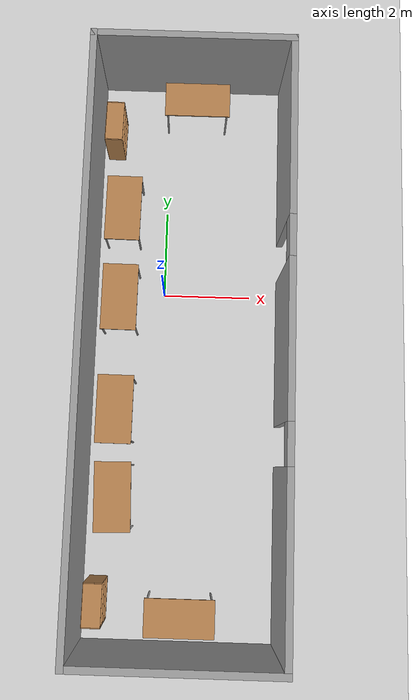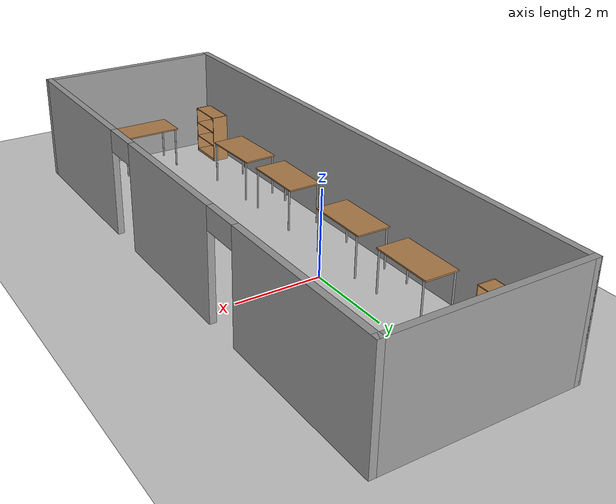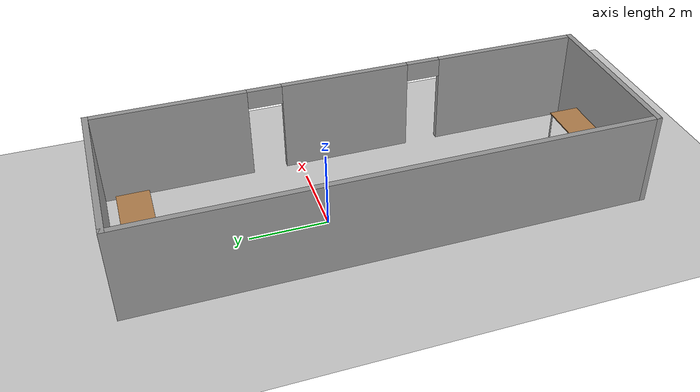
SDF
<sdf version="1.7">
 <world name="default">
  <light name="sun" type="directional">
   <pose>0 0 10 0 -0 0</pose>
   <diffuse>0.8 0.8 0.8 1</diffuse>
   <specular>0.2 0.2 0.2 1</specular>
   <attenuation>
    <range>1000</range>
    <constant>0.9</constant>
    <linear>0.01</linear>
    <quadratic>0.001</quadratic>
   </attenuation>
   <direction>-0.5 0.1 -0.9</direction>
   <spot><inner_angle>0</inner_angle><outer_angle>0</outer_angle><falloff>0</falloff></spot>
  </light>
  <model name="ground_plane">
   <static>1</static>
   <link name="link">
    <collision name="collision">
     <geometry><plane><normal>0 0 1</normal><size>100 100</size></plane></geometry>
     <surface>
      <contact><collide_bitmask>65535</collide_bitmask></contact>
      <friction><ode><mu>100</mu><mu2>50</mu2></ode></friction>
     </surface>
    </collision>
    <visual name="visual">
     <cast_shadows>0</cast_shadows>
     <geometry><plane><normal>0 0 1</normal><size>100 100</size></plane></geometry>
     <material>
      <script><uri>file://media/materials/scripts/gazebo.material</uri><name>Gazebo/Grey</name></script>
     </material>
    </visual>
   </link>
  </model>
  <gravity>0 0 -9.8</gravity>
  <magnetic_field>6e-06 2.3e-05 -4.2e-05</magnetic_field>
  <atmosphere type="adiabatic"/>
  <physics type="ode">
   <max_step_size>0.001</max_step_size>
   <real_time_factor>1</real_time_factor>
   <real_time_update_rate>1000</real_time_update_rate>
  </physics>
  <scene><ambient>0.4 0.4 0.4 1</ambient><background>0.7 0.7 0.7 1</background><shadows>1</shadows></scene>
  <spherical_coordinates>
   <surface_model>EARTH_WGS84</surface_model>
   <latitude_deg>0</latitude_deg>
   <longitude_deg>0</longitude_deg>
   <elevation>0</elevation>
   <heading_deg>0</heading_deg>
  </spherical_coordinates>
  <model name="lab">
   <pose>0.52 -1.3155 0 0 -0 0</pose>
   <link name="Wall_2">
    <collision name="Wall_2_Collision">
     <geometry><box><size>4.5 0.15 2.5</size></box></geometry>
     <pose>0 0 1.25 0 -0 0</pose>
    </collision>
    <visual name="Wall_2_Visual">
     <pose>0 0 1.25 0 -0 0</pose>
     <geometry><box><size>4.5 0.15 2.5</size></box></geometry>
     <material>
      <script><uri>file://media/materials/scripts/gazebo.material</uri><name>Gazebo/Grey</name></script>
      <ambient>1 1 1 1</ambient>
     </material>
     <meta><layer>0</layer></meta>
    </visual>
    <pose>0 6.55 0 0 -0 0</pose>
   </link>
   <link name="Wall_3">
    <pose>2.175 0 0 0 -0 -1.5708</pose>
    <visual name="Wall_3_Visual_0">
     <pose>-4.61072 0 1.25 0 -0 0</pose>
     <geometry><box><size>4.02857 0.15 2.5</size></box></geometry>
     <material>
      <script><uri>file://media/materials/scripts/gazebo.material</uri><name>Gazebo/Grey</name></script>
      <ambient>1 1 1 1</ambient>
     </material>
     <meta><layer>0</layer></meta>
    </visual>
    <collision name="Wall_3_Collision_0">
     <geometry><box><size>4.02857 0.15 2.5</size></box></geometry>
     <pose>-4.61072 0 1.25 0 -0 0</pose>
    </collision>
    <visual name="Wall_3_Visual_1">
     <pose>0.004715 0 1.25 0 -0 0</pose>
     <geometry><box><size>3.40229 0.15 2.5</size></box></geometry>
     <material>
      <script><uri>file://media/materials/scripts/gazebo.material</uri><name>Gazebo/Grey</name></script>
      <ambient>1 1 1 1</ambient>
     </material>
     <meta><layer>0</layer></meta>
    </visual>
    <collision name="Wall_3_Collision_1">
     <geometry><box><size>3.40229 0.15 2.5</size></box></geometry>
     <pose>0.004715 0 1.25 0 -0 0</pose>
    </collision>
    <visual name="Wall_3_Visual_2">
     <pose>4.61543 0 1.25 0 -0 0</pose>
     <geometry><box><size>4.01914 0.15 2.5</size></box></geometry>
     <material>
      <script><uri>file://media/materials/scripts/gazebo.material</uri><name>Gazebo/Grey</name></script>
      <ambient>1 1 1 1</ambient>
     </material>
     <meta><layer>0</layer></meta>
    </visual>
    <collision name="Wall_3_Collision_2">
     <geometry><box><size>4.01914 0.15 2.5</size></box></geometry>
     <pose>4.61543 0 1.25 0 -0 0</pose>
    </collision>
    <visual name="Wall_3_Visual_3">
     <pose>-2.14643 0 2.25 0 -0 0</pose>
     <geometry><box><size>0.9 0.15 0.5</size></box></geometry>
     <material>
      <script><uri>file://media/materials/scripts/gazebo.material</uri><name>Gazebo/Grey</name></script>
      <ambient>1 1 1 1</ambient>
     </material>
     <meta><layer>0</layer></meta>
    </visual>
    <collision name="Wall_3_Collision_3">
     <geometry><box><size>0.9 0.15 0.5</size></box></geometry>
     <pose>-2.14643 0 2.25 0 -0 0</pose>
    </collision>
    <visual name="Wall_3_Visual_4">
     <pose>2.15586 0 2.25 0 -0 0</pose>
     <geometry><box><size>0.9 0.15 0.5</size></box></geometry>
     <material>
      <script><uri>file://media/materials/scripts/gazebo.material</uri><name>Gazebo/Grey</name></script>
      <ambient>1 1 1 1</ambient>
     </material>
     <meta><layer>0</layer></meta>
    </visual>
    <collision name="Wall_3_Collision_4">
     <geometry><box><size>0.9 0.15 0.5</size></box></geometry>
     <pose>2.15586 0 2.25 0 -0 0</pose>
    </collision>
   </link>
   <link name="Wall_4">
    <collision name="Wall_4_Collision">
     <geometry><box><size>4.5 0.15 2.5</size></box></geometry>
     <pose>0 0 1.25 0 -0 0</pose>
    </collision>
    <visual name="Wall_4_Visual">
     <pose>0 0 1.25 0 -0 0</pose>
     <geometry><box><size>4.5 0.15 2.5</size></box></geometry>
     <material>
      <script><uri>file://media/materials/scripts/gazebo.material</uri><name>Gazebo/Grey</name></script>
      <ambient>1 1 1 1</ambient>
     </material>
     <meta><layer>0</layer></meta>
    </visual>
    <pose>0 -6.55 0 0 -0 3.14159</pose>
   </link>
   <link name="Wall_5">
    <collision name="Wall_5_Collision">
     <geometry><box><size>13.25 0.15 2.5</size></box></geometry>
     <pose>0 0 1.25 0 -0 0</pose>
    </collision>
    <visual name="Wall_5_Visual">
     <pose>0 0 1.25 0 -0 0</pose>
     <geometry><box><size>13.25 0.15 2.5</size></box></geometry>
     <material>
      <script><uri>file://media/materials/scripts/gazebo.material</uri><name>Gazebo/Grey</name></script>
      <ambient>1 1 1 1</ambient>
     </material>
     <meta><layer>0</layer></meta>
    </visual>
    <pose>-2.175 0 0 0 -0 1.5708</pose>
   </link>
   <static>1</static>
  </model>
  <model name="table">
   <static>1</static>
   <link name="link">
    <collision name="surface">
     <pose>0 0 1 0 -0 0</pose>
     <geometry><box><size>1.5 0.8 0.03</size></box></geometry>
     <surface><friction><ode><mu>0.6</mu><mu2>0.6</mu2></ode></friction></surface>
    </collision>
    <visual name="visual1">
     <pose>0 0 1 0 -0 0</pose>
     <geometry><box><size>1.5 0.8 0.03</size></box></geometry>
     <material>
      <script><uri>file://media/materials/scripts/gazebo.material</uri><name>Gazebo/Wood</name></script>
     </material>
    </visual>
    <collision name="front_left_leg">
     <pose>0.68 0.38 0.5 0 -0 0</pose>
     <geometry><cylinder><radius>0.02</radius><length>1</length></cylinder></geometry>
    </collision>
    <visual name="front_left_leg">
     <pose>0.68 0.38 0.5 0 -0 0</pose>
     <geometry><cylinder><radius>0.02</radius><length>1</length></cylinder></geometry>
     <material>
      <script><uri>file://media/materials/scripts/gazebo.material</uri><name>Gazebo/Grey</name></script>
     </material>
    </visual>
    <collision name="front_right_leg">
     <pose>0.68 -0.38 0.5 0 -0 0</pose>
     <geometry><cylinder><radius>0.02</radius><length>1</length></cylinder></geometry>
    </collision>
    <visual name="front_right_leg">
     <pose>0.68 -0.38 0.5 0 -0 0</pose>
     <geometry><cylinder><radius>0.02</radius><length>1</length></cylinder></geometry>
     <material>
      <script><uri>file://media/materials/scripts/gazebo.material</uri><name>Gazebo/Grey</name></script>
     </material>
    </visual>
    <collision name="back_right_leg">
     <pose>-0.68 -0.38 0.5 0 -0 0</pose>
     <geometry><cylinder><radius>0.02</radius><length>1</length></cylinder></geometry>
    </collision>
    <visual name="back_right_leg">
     <pose>-0.68 -0.38 0.5 0 -0 0</pose>
     <geometry><cylinder><radius>0.02</radius><length>1</length></cylinder></geometry>
     <material>
      <script><uri>file://media/materials/scripts/gazebo.material</uri><name>Gazebo/Grey</name></script>
     </material>
    </visual>
    <collision name="back_left_leg">
     <pose>-0.68 0.38 0.5 0 -0 0</pose>
     <geometry><cylinder><radius>0.02</radius><length>1</length></cylinder></geometry>
    </collision>
    <visual name="back_left_leg">
     <pose>-0.68 0.38 0.5 0 -0 0</pose>
     <geometry><cylinder><radius>0.02</radius><length>1</length></cylinder></geometry>
     <material>
      <script><uri>file://media/materials/scripts/gazebo.material</uri><name>Gazebo/Grey</name></script>
     </material>
    </visual>
   </link>
   <pose>0.638683 4.47077 0 0 -0 0</pose>
  </model>
  <model name="table_0">
   <static>1</static>
   <link name="link">
    <collision name="surface">
     <pose>0 0 1 0 -0 0</pose>
     <geometry><box><size>1.5 0.8 0.03</size></box></geometry>
     <surface><friction><ode><mu>0.6</mu><mu2>0.6</mu2></ode></friction></surface>
    </collision>
    <visual name="visual1">
     <pose>0 0 1 0 -0 0</pose>
     <geometry><box><size>1.5 0.8 0.03</size></box></geometry>
     <material>
      <script><uri>file://media/materials/scripts/gazebo.material</uri><name>Gazebo/Wood</name></script>
     </material>
    </visual>
    <collision name="front_left_leg">
     <pose>0.68 0.38 0.5 0 -0 0</pose>
     <geometry><cylinder><radius>0.02</radius><length>1</length></cylinder></geometry>
    </collision>
    <visual name="front_left_leg">
     <pose>0.68 0.38 0.5 0 -0 0</pose>
     <geometry><cylinder><radius>0.02</radius><length>1</length></cylinder></geometry>
     <material>
      <script><uri>file://media/materials/scripts/gazebo.material</uri><name>Gazebo/Grey</name></script>
     </material>
    </visual>
    <collision name="front_right_leg">
     <pose>0.68 -0.38 0.5 0 -0 0</pose>
     <geometry><cylinder><radius>0.02</radius><length>1</length></cylinder></geometry>
    </collision>
    <visual name="front_right_leg">
     <pose>0.68 -0.38 0.5 0 -0 0</pose>
     <geometry><cylinder><radius>0.02</radius><length>1</length></cylinder></geometry>
     <material>
      <script><uri>file://media/materials/scripts/gazebo.material</uri><name>Gazebo/Grey</name></script>
     </material>
    </visual>
    <collision name="back_right_leg">
     <pose>-0.68 -0.38 0.5 0 -0 0</pose>
     <geometry><cylinder><radius>0.02</radius><length>1</length></cylinder></geometry>
    </collision>
    <visual name="back_right_leg">
     <pose>-0.68 -0.38 0.5 0 -0 0</pose>
     <geometry><cylinder><radius>0.02</radius><length>1</length></cylinder></geometry>
     <material>
      <script><uri>file://media/materials/scripts/gazebo.material</uri><name>Gazebo/Grey</name></script>
     </material>
    </visual>
    <collision name="back_left_leg">
     <pose>-0.68 0.38 0.5 0 -0 0</pose>
     <geometry><cylinder><radius>0.02</radius><length>1</length></cylinder></geometry>
    </collision>
    <visual name="back_left_leg">
     <pose>-0.68 0.38 0.5 0 -0 0</pose>
     <geometry><cylinder><radius>0.02</radius><length>1</length></cylinder></geometry>
     <material>
      <script><uri>file://media/materials/scripts/gazebo.material</uri><name>Gazebo/Grey</name></script>
     </material>
    </visual>
   </link>
   <pose>0.581907 -7.13904 0 0 -0 0</pose>
  </model>
  <model name="table_1">
   <static>1</static>
   <link name="link">
    <collision name="surface">
     <pose>0 0 1 0 -0 0</pose>
     <geometry><box><size>1.5 0.8 0.03</size></box></geometry>
     <surface><friction><ode><mu>0.6</mu><mu2>0.6</mu2></ode></friction></surface>
    </collision>
    <visual name="visual1">
     <pose>0 0 1 0 -0 0</pose>
     <geometry><box><size>1.5 0.8 0.03</size></box></geometry>
     <material>
      <script><uri>file://media/materials/scripts/gazebo.material</uri><name>Gazebo/Wood</name></script>
     </material>
    </visual>
    <collision name="front_left_leg">
     <pose>0.68 0.38 0.5 0 -0 0</pose>
     <geometry><cylinder><radius>0.02</radius><length>1</length></cylinder></geometry>
    </collision>
    <visual name="front_left_leg">
     <pose>0.68 0.38 0.5 0 -0 0</pose>
     <geometry><cylinder><radius>0.02</radius><length>1</length></cylinder></geometry>
     <material>
      <script><uri>file://media/materials/scripts/gazebo.material</uri><name>Gazebo/Grey</name></script>
     </material>
    </visual>
    <collision name="front_right_leg">
     <pose>0.68 -0.38 0.5 0 -0 0</pose>
     <geometry><cylinder><radius>0.02</radius><length>1</length></cylinder></geometry>
    </collision>
    <visual name="front_right_leg">
     <pose>0.68 -0.38 0.5 0 -0 0</pose>
     <geometry><cylinder><radius>0.02</radius><length>1</length></cylinder></geometry>
     <material>
      <script><uri>file://media/materials/scripts/gazebo.material</uri><name>Gazebo/Grey</name></script>
     </material>
    </visual>
    <collision name="back_right_leg">
     <pose>-0.68 -0.38 0.5 0 -0 0</pose>
     <geometry><cylinder><radius>0.02</radius><length>1</length></cylinder></geometry>
    </collision>
    <visual name="back_right_leg">
     <pose>-0.68 -0.38 0.5 0 -0 0</pose>
     <geometry><cylinder><radius>0.02</radius><length>1</length></cylinder></geometry>
     <material>
      <script><uri>file://media/materials/scripts/gazebo.material</uri><name>Gazebo/Grey</name></script>
     </material>
    </visual>
    <collision name="back_left_leg">
     <pose>-0.68 0.38 0.5 0 -0 0</pose>
     <geometry><cylinder><radius>0.02</radius><length>1</length></cylinder></geometry>
    </collision>
    <visual name="back_left_leg">
     <pose>-0.68 0.38 0.5 0 -0 0</pose>
     <geometry><cylinder><radius>0.02</radius><length>1</length></cylinder></geometry>
     <material>
      <script><uri>file://media/materials/scripts/gazebo.material</uri><name>Gazebo/Grey</name></script>
     </material>
    </visual>
   </link>
   <pose>-0.979309 1.8025 0 0 0 -1.58382</pose>
  </model>
  <model name="table_2">
   <static>1</static>
   <link name="link">
    <collision name="surface">
     <pose>0 0 1 0 -0 0</pose>
     <geometry><box><size>1.5 0.8 0.03</size></box></geometry>
     <surface><friction><ode><mu>0.6</mu><mu2>0.6</mu2></ode></friction></surface>
    </collision>
    <visual name="visual1">
     <pose>0 0 1 0 -0 0</pose>
     <geometry><box><size>1.5 0.8 0.03</size></box></geometry>
     <material>
      <script><uri>file://media/materials/scripts/gazebo.material</uri><name>Gazebo/Wood</name></script>
     </material>
    </visual>
    <collision name="front_left_leg">
     <pose>0.68 0.38 0.5 0 -0 0</pose>
     <geometry><cylinder><radius>0.02</radius><length>1</length></cylinder></geometry>
    </collision>
    <visual name="front_left_leg">
     <pose>0.68 0.38 0.5 0 -0 0</pose>
     <geometry><cylinder><radius>0.02</radius><length>1</length></cylinder></geometry>
     <material>
      <script><uri>file://media/materials/scripts/gazebo.material</uri><name>Gazebo/Grey</name></script>
     </material>
    </visual>
    <collision name="front_right_leg">
     <pose>0.68 -0.38 0.5 0 -0 0</pose>
     <geometry><cylinder><radius>0.02</radius><length>1</length></cylinder></geometry>
    </collision>
    <visual name="front_right_leg">
     <pose>0.68 -0.38 0.5 0 -0 0</pose>
     <geometry><cylinder><radius>0.02</radius><length>1</length></cylinder></geometry>
     <material>
      <script><uri>file://media/materials/scripts/gazebo.material</uri><name>Gazebo/Grey</name></script>
     </material>
    </visual>
    <collision name="back_right_leg">
     <pose>-0.68 -0.38 0.5 0 -0 0</pose>
     <geometry><cylinder><radius>0.02</radius><length>1</length></cylinder></geometry>
    </collision>
    <visual name="back_right_leg">
     <pose>-0.68 -0.38 0.5 0 -0 0</pose>
     <geometry><cylinder><radius>0.02</radius><length>1</length></cylinder></geometry>
     <material>
      <script><uri>file://media/materials/scripts/gazebo.material</uri><name>Gazebo/Grey</name></script>
     </material>
    </visual>
    <collision name="back_left_leg">
     <pose>-0.68 0.38 0.5 0 -0 0</pose>
     <geometry><cylinder><radius>0.02</radius><length>1</length></cylinder></geometry>
    </collision>
    <visual name="back_left_leg">
     <pose>-0.68 0.38 0.5 0 -0 0</pose>
     <geometry><cylinder><radius>0.02</radius><length>1</length></cylinder></geometry>
     <material>
      <script><uri>file://media/materials/scripts/gazebo.material</uri><name>Gazebo/Grey</name></script>
     </material>
    </visual>
   </link>
   <pose>-0.979311 -0.269664 0 0 0 -1.57625</pose>
  </model>
  <model name="table_3">
   <static>1</static>
   <link name="link">
    <collision name="surface">
     <pose>0 0 1 0 -0 0</pose>
     <geometry><box><size>1.5 0.8 0.03</size></box></geometry>
     <surface><friction><ode><mu>0.6</mu><mu2>0.6</mu2></ode></friction></surface>
    </collision>
    <visual name="visual1">
     <pose>0 0 1 0 -0 0</pose>
     <geometry><box><size>1.5 0.8 0.03</size></box></geometry>
     <material>
      <script><uri>file://media/materials/scripts/gazebo.material</uri><name>Gazebo/Wood</name></script>
     </material>
    </visual>
    <collision name="front_left_leg">
     <pose>0.68 0.38 0.5 0 -0 0</pose>
     <geometry><cylinder><radius>0.02</radius><length>1</length></cylinder></geometry>
    </collision>
    <visual name="front_left_leg">
     <pose>0.68 0.38 0.5 0 -0 0</pose>
     <geometry><cylinder><radius>0.02</radius><length>1</length></cylinder></geometry>
     <material>
      <script><uri>file://media/materials/scripts/gazebo.material</uri><name>Gazebo/Grey</name></script>
     </material>
    </visual>
    <collision name="front_right_leg">
     <pose>0.68 -0.38 0.5 0 -0 0</pose>
     <geometry><cylinder><radius>0.02</radius><length>1</length></cylinder></geometry>
    </collision>
    <visual name="front_right_leg">
     <pose>0.68 -0.38 0.5 0 -0 0</pose>
     <geometry><cylinder><radius>0.02</radius><length>1</length></cylinder></geometry>
     <material>
      <script><uri>file://media/materials/scripts/gazebo.material</uri><name>Gazebo/Grey</name></script>
     </material>
    </visual>
    <collision name="back_right_leg">
     <pose>-0.68 -0.38 0.5 0 -0 0</pose>
     <geometry><cylinder><radius>0.02</radius><length>1</length></cylinder></geometry>
    </collision>
    <visual name="back_right_leg">
     <pose>-0.68 -0.38 0.5 0 -0 0</pose>
     <geometry><cylinder><radius>0.02</radius><length>1</length></cylinder></geometry>
     <material>
      <script><uri>file://media/materials/scripts/gazebo.material</uri><name>Gazebo/Grey</name></script>
     </material>
    </visual>
    <collision name="back_left_leg">
     <pose>-0.68 0.38 0.5 0 -0 0</pose>
     <geometry><cylinder><radius>0.02</radius><length>1</length></cylinder></geometry>
    </collision>
    <visual name="back_left_leg">
     <pose>-0.68 0.38 0.5 0 -0 0</pose>
     <geometry><cylinder><radius>0.02</radius><length>1</length></cylinder></geometry>
     <material>
      <script><uri>file://media/materials/scripts/gazebo.material</uri><name>Gazebo/Grey</name></script>
     </material>
    </visual>
   </link>
   <pose>-0.979312 -2.78181 0 0 0 -1.57669</pose>
  </model>
  <model name="table_4">
   <static>1</static>
   <link name="link">
    <collision name="surface">
     <pose>0 0 1 0 -0 0</pose>
     <geometry><box><size>1.5 0.8 0.03</size></box></geometry>
     <surface><friction><ode><mu>0.6</mu><mu2>0.6</mu2></ode></friction></surface>
    </collision>
    <visual name="visual1">
     <pose>0 0 1 0 -0 0</pose>
     <geometry><box><size>1.5 0.8 0.03</size></box></geometry>
     <material>
      <script><uri>file://media/materials/scripts/gazebo.material</uri><name>Gazebo/Wood</name></script>
     </material>
    </visual>
    <collision name="front_left_leg">
     <pose>0.68 0.38 0.5 0 -0 0</pose>
     <geometry><cylinder><radius>0.02</radius><length>1</length></cylinder></geometry>
    </collision>
    <visual name="front_left_leg">
     <pose>0.68 0.38 0.5 0 -0 0</pose>
     <geometry><cylinder><radius>0.02</radius><length>1</length></cylinder></geometry>
     <material>
      <script><uri>file://media/materials/scripts/gazebo.material</uri><name>Gazebo/Grey</name></script>
     </material>
    </visual>
    <collision name="front_right_leg">
     <pose>0.68 -0.38 0.5 0 -0 0</pose>
     <geometry><cylinder><radius>0.02</radius><length>1</length></cylinder></geometry>
    </collision>
    <visual name="front_right_leg">
     <pose>0.68 -0.38 0.5 0 -0 0</pose>
     <geometry><cylinder><radius>0.02</radius><length>1</length></cylinder></geometry>
     <material>
      <script><uri>file://media/materials/scripts/gazebo.material</uri><name>Gazebo/Grey</name></script>
     </material>
    </visual>
    <collision name="back_right_leg">
     <pose>-0.68 -0.38 0.5 0 -0 0</pose>
     <geometry><cylinder><radius>0.02</radius><length>1</length></cylinder></geometry>
    </collision>
    <visual name="back_right_leg">
     <pose>-0.68 -0.38 0.5 0 -0 0</pose>
     <geometry><cylinder><radius>0.02</radius><length>1</length></cylinder></geometry>
     <material>
      <script><uri>file://media/materials/scripts/gazebo.material</uri><name>Gazebo/Grey</name></script>
     </material>
    </visual>
    <collision name="back_left_leg">
     <pose>-0.68 0.38 0.5 0 -0 0</pose>
     <geometry><cylinder><radius>0.02</radius><length>1</length></cylinder></geometry>
    </collision>
    <visual name="back_left_leg">
     <pose>-0.68 0.38 0.5 0 -0 0</pose>
     <geometry><cylinder><radius>0.02</radius><length>1</length></cylinder></geometry>
     <material>
      <script><uri>file://media/materials/scripts/gazebo.material</uri><name>Gazebo/Grey</name></script>
     </material>
    </visual>
   </link>
   <pose>-0.936734 -4.66947 0 0 0 -1.54208</pose>
  </model>
  <model name="bookshelf">
   <static>1</static>
   <link name="link">
    <inertial><mass>1</mass></inertial>
    <collision name="back">
     <pose>0 0.005 0.6 0 -0 0</pose>
     <geometry><box><size>0.9 0.01 1.2</size></box></geometry>
    </collision>
    <visual name="visual1">
     <pose>0 0.005 0.6 0 -0 0</pose>
     <geometry><box><size>0.9 0.01 1.2</size></box></geometry>
     <material>
      <script><uri>file://media/materials/scripts/gazebo.material</uri><name>Gazebo/Wood</name></script>
     </material>
    </visual>
    <collision name="left_side">
     <pose>0.45 -0.195 0.6 0 -0 0</pose>
     <geometry><box><size>0.02 0.4 1.2</size></box></geometry>
    </collision>
    <visual name="visual2">
     <pose>0.45 -0.195 0.6 0 -0 0</pose>
     <geometry><box><size>0.02 0.4 1.2</size></box></geometry>
     <material>
      <script><uri>file://media/materials/scripts/gazebo.material</uri><name>Gazebo/Wood</name></script>
     </material>
    </visual>
    <collision name="right_side">
     <pose>-0.45 -0.195 0.6 0 -0 0</pose>
     <geometry><box><size>0.02 0.4 1.2</size></box></geometry>
    </collision>
    <visual name="visual3">
     <pose>-0.45 -0.195 0.6 0 -0 0</pose>
     <geometry><box><size>0.02 0.4 1.2</size></box></geometry>
     <material>
      <script><uri>file://media/materials/scripts/gazebo.material</uri><name>Gazebo/Wood</name></script>
     </material>
    </visual>
    <collision name="bottom">
     <pose>0 -0.195 0.03 0 -0 0</pose>
     <geometry><box><size>0.88 0.4 0.06</size></box></geometry>
    </collision>
    <visual name="visual4">
     <pose>0 -0.195 0.03 0 -0 0</pose>
     <geometry><box><size>0.88 0.4 0.06</size></box></geometry>
     <material>
      <script><uri>file://media/materials/scripts/gazebo.material</uri><name>Gazebo/Wood</name></script>
     </material>
    </visual>
    <collision name="top">
     <pose>0 -0.195 1.19 0 -0 0</pose>
     <geometry><box><size>0.88 0.4 0.02</size></box></geometry>
    </collision>
    <visual name="visual5">
     <pose>0 -0.195 1.19 0 -0 0</pose>
     <geometry><box><size>0.88 0.4 0.02</size></box></geometry>
     <material>
      <script><uri>file://media/materials/scripts/gazebo.material</uri><name>Gazebo/Wood</name></script>
     </material>
    </visual>
    <collision name="low_shelf">
     <pose>0 -0.195 0.43 0 -0 0</pose>
     <geometry><box><size>0.88 0.4 0.02</size></box></geometry>
    </collision>
    <visual name="visual6">
     <pose>0 -0.195 0.43 0 -0 0</pose>
     <geometry><box><size>0.88 0.4 0.02</size></box></geometry>
     <material>
      <script><uri>file://media/materials/scripts/gazebo.material</uri><name>Gazebo/Wood</name></script>
     </material>
    </visual>
    <collision name="high_shelf">
     <pose>0 -0.195 0.8 0 -0 0</pose>
     <geometry><box><size>0.88 0.4 0.02</size></box></geometry>
    </collision>
    <visual name="visual7">
     <pose>0 -0.195 0.8 0 -0 0</pose>
     <geometry><box><size>0.88 0.4 0.02</size></box></geometry>
     <material>
      <script><uri>file://media/materials/scripts/gazebo.material</uri><name>Gazebo/Wood</name></script>
     </material>
    </visual>
   </link>
   <pose>-1.44789 3.81492 0 0 -0 1.55014</pose>
  </model>
  <model name="bookshelf_0">
   <static>1</static>
   <link name="link">
    <inertial><mass>1</mass></inertial>
    <collision name="back">
     <pose>0 0.005 0.6 0 -0 0</pose>
     <geometry><box><size>0.9 0.01 1.2</size></box></geometry>
    </collision>
    <visual name="visual1">
     <pose>0 0.005 0.6 0 -0 0</pose>
     <geometry><box><size>0.9 0.01 1.2</size></box></geometry>
     <material>
      <script><uri>file://media/materials/scripts/gazebo.material</uri><name>Gazebo/Wood</name></script>
     </material>
    </visual>
    <collision name="left_side">
     <pose>0.45 -0.195 0.6 0 -0 0</pose>
     <geometry><box><size>0.02 0.4 1.2</size></box></geometry>
    </collision>
    <visual name="visual2">
     <pose>0.45 -0.195 0.6 0 -0 0</pose>
     <geometry><box><size>0.02 0.4 1.2</size></box></geometry>
     <material>
      <script><uri>file://media/materials/scripts/gazebo.material</uri><name>Gazebo/Wood</name></script>
     </material>
    </visual>
    <collision name="right_side">
     <pose>-0.45 -0.195 0.6 0 -0 0</pose>
     <geometry><box><size>0.02 0.4 1.2</size></box></geometry>
    </collision>
    <visual name="visual3">
     <pose>-0.45 -0.195 0.6 0 -0 0</pose>
     <geometry><box><size>0.02 0.4 1.2</size></box></geometry>
     <material>
      <script><uri>file://media/materials/scripts/gazebo.material</uri><name>Gazebo/Wood</name></script>
     </material>
    </visual>
    <collision name="bottom">
     <pose>0 -0.195 0.03 0 -0 0</pose>
     <geometry><box><size>0.88 0.4 0.06</size></box></geometry>
    </collision>
    <visual name="visual4">
     <pose>0 -0.195 0.03 0 -0 0</pose>
     <geometry><box><size>0.88 0.4 0.06</size></box></geometry>
     <material>
      <script><uri>file://media/materials/scripts/gazebo.material</uri><name>Gazebo/Wood</name></script>
     </material>
    </visual>
    <collision name="top">
     <pose>0 -0.195 1.19 0 -0 0</pose>
     <geometry><box><size>0.88 0.4 0.02</size></box></geometry>
    </collision>
    <visual name="visual5">
     <pose>0 -0.195 1.19 0 -0 0</pose>
     <geometry><box><size>0.88 0.4 0.02</size></box></geometry>
     <material>
      <script><uri>file://media/materials/scripts/gazebo.material</uri><name>Gazebo/Wood</name></script>
     </material>
    </visual>
    <collision name="low_shelf">
     <pose>0 -0.195 0.43 0 -0 0</pose>
     <geometry><box><size>0.88 0.4 0.02</size></box></geometry>
    </collision>
    <visual name="visual6">
     <pose>0 -0.195 0.43 0 -0 0</pose>
     <geometry><box><size>0.88 0.4 0.02</size></box></geometry>
     <material>
      <script><uri>file://media/materials/scripts/gazebo.material</uri><name>Gazebo/Wood</name></script>
     </material>
    </visual>
    <collision name="high_shelf">
     <pose>0 -0.195 0.8 0 -0 0</pose>
     <geometry><box><size>0.88 0.4 0.02</size></box></geometry>
    </collision>
    <visual name="visual7">
     <pose>0 -0.195 0.8 0 -0 0</pose>
     <geometry><box><size>0.88 0.4 0.02</size></box></geometry>
     <material>
      <script><uri>file://media/materials/scripts/gazebo.material</uri><name>Gazebo/Wood</name></script>
     </material>
    </visual>
   </link>
   <pose>-1.4402 -6.8945 0.015483 0 -0 1.56462</pose>
  </model>
 </world>
</sdf>
